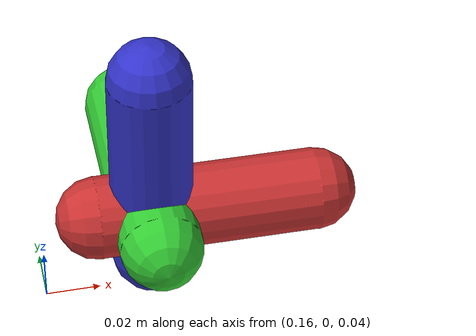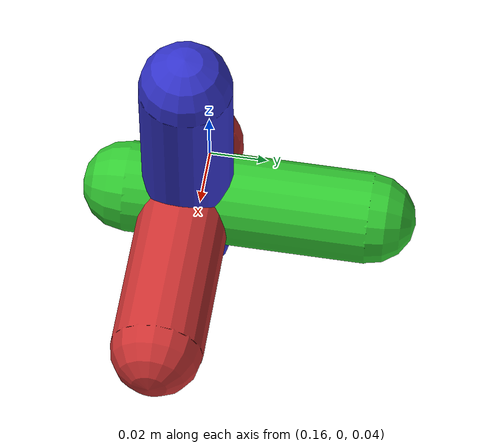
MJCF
<mujoco>
  <default>
    <default class="object">
      <geom type="capsule" size=".015" mass=".04" condim="6" friction="1 5e-3 5e-4"/>
    </default>
  </default>

  <worldbody>
    <light pos="0 0 1"/>
    <body name="cross" pos="0.2 0.0 0.075" quat="1 0 0 0">
      <freejoint/>
      <geom class="object" fromto="-.02 0 0 .06 0 0" rgba=".8 .2 .2 1" name="red"/>
      <geom class="object" fromto="0 -.02 0 0 .06 0" rgba=".2 .8 .2 1" name="green"/>
      <geom class="object" fromto="0 0 -.02 0 0 .06" rgba=".2 .2 .8 1" name="blue"/>
    </body>
  </worldbody>

  <sensor>
    <framepos name="position" objtype="body" objname="cross"/>
    <framequat name="orientation" objtype="body" objname="cross"/>
    <framelinvel name="linear_velocity" objtype="body" objname="cross"/>
    <frameangvel name="angular_velocity" objtype="body" objname="cross"/>
  </sensor>
</mujoco>
